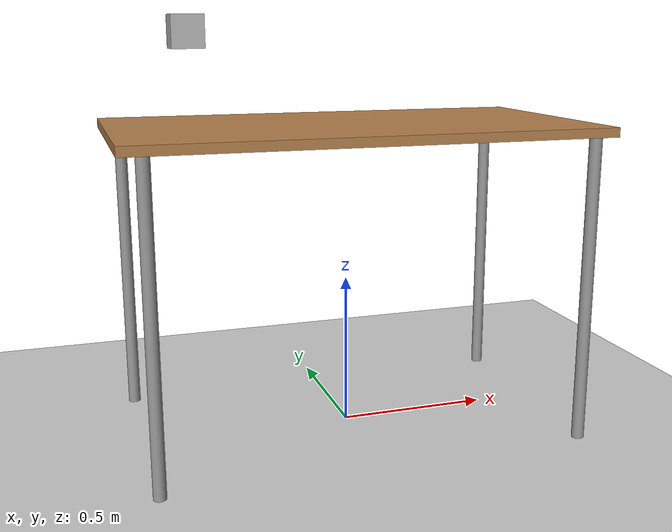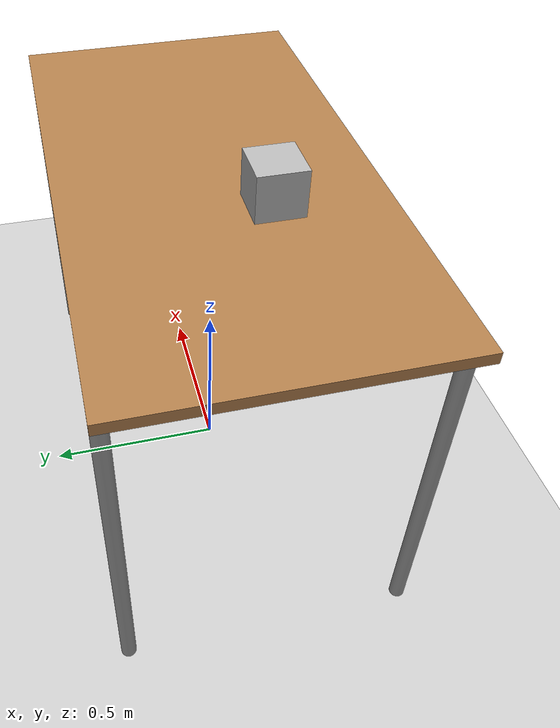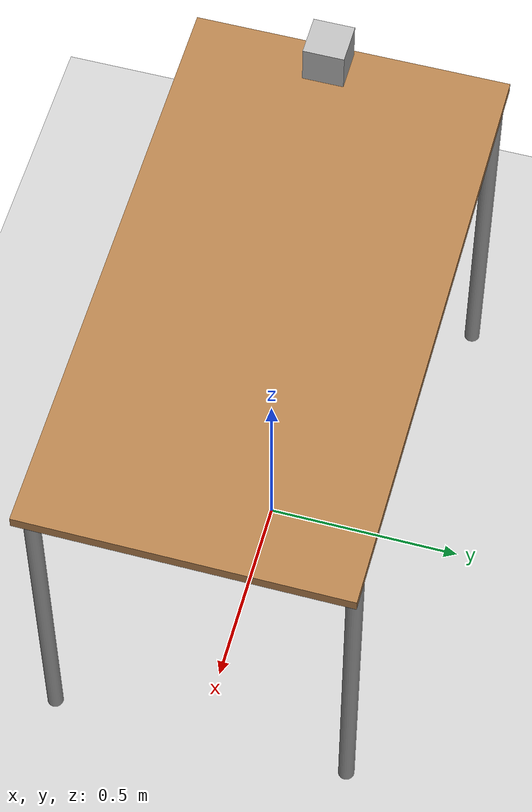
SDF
<sdf version="1.5">
	<world name="default">
		<!-- Earth Gravity-->
		<gravity>0 0 -9.8</gravity>
		<include>
			<uri>model://sun</uri>
		</include>
		<include>
			<uri>model://ground_plane</uri>
		</include>
		<include>
			<uri>model://table</uri>
		</include>
		<model name='camera'>
	      <static>true</static>
	      <pose>-0.5 0 1.3 0 0 1.57</pose>
	      <link name='link'>
	        <visual name='visual'>
	          <geometry>
	            <box>
	              <size>0.1 0.1 0.1</size>
	            </box>
	          </geometry>
	        </visual>
	        <sensor name='my_camera' type='camera'>
	          <update_rate>30.0</update_rate>
	          <camera name="head">
	            <save enabled="true">
	              <path>/tmp/camera_save_tutorial</path>
	            </save>
	            <horizontal_fov>1.047</horizontal_fov>
	            <image>
		          <width>800</width>
		          <height>800</height>
		          <format>R8G8B8</format>
	            </image>
	            <clip>
	              <near>0.02</near>
	              <far>300</far>
	            </clip>
	          </camera>
	          <update_rate>30</update_rate>
	          <plugin name="camera_controller" filename="libgazebo_ros_camera.so">
		        <alwaysOn>true</alwaysOn>
		        <updateRate>0.0</updateRate>
		        <cameraName>rrbot/camera_2</cameraName>
		        <imageTopicName>image_raw_2</imageTopicName>
		        <cameraInfoTopicName>camera_info</cameraInfoTopicName>
		        <frameName>camera_link</frameName>
		        <hackBaseline>0.07</hackBaseline>
		        <distortionK1>0.0</distortionK1>
		        <distortionK2>0.0</distortionK2>
		        <distortionK3>0.0</distortionK3>
		        <distortionT1>0.0</distortionT1>
		        <distortionT2>0.0</distortionT2>
      		  </plugin>
	        </sensor>
	      </link>

	    </model>
	</world>
</sdf>

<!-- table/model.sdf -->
<sdf version="1.5">
  <model name="table">
    <static>true</static>
    <link name="link">
      <collision name="surface">
        <pose>0 0 1.0 0 0 0</pose>
        <geometry>
          <box>
            <size>1.5 0.8 0.03</size>
          </box>
        </geometry>
        <surface>
          <friction>
            <ode>
              <mu>0.6</mu>
              <mu2>0.6</mu2>
            </ode>
          </friction>
        </surface>
      </collision>
      <visual name="visual1">
        <pose>0 0 1.0 0 0 0</pose>
        <geometry>
          <box>
            <size>1.5 0.8 0.03</size>
          </box>
        </geometry>
        <material>
          <script>
            <uri>model://media/materials/scripts/gazebo.material</uri>
            <name>Gazebo/Wood</name>
          </script>
        </material>
      </visual>
      <collision name="front_left_leg">
        <pose>0.68 0.38 0.5 0 0 0</pose>
        <geometry>
          <cylinder>
            <radius>0.02</radius>
            <length>1.0</length>
          </cylinder>
        </geometry>
      </collision>
      <visual name="front_left_leg">
        <pose>0.68 0.38 0.5 0 0 0</pose>
        <geometry>
          <cylinder>
            <radius>0.02</radius>
            <length>1.0</length>
          </cylinder>
        </geometry>
        <material>
          <script>
            <uri>model://media/materials/scripts/gazebo.material</uri>
            <name>Gazebo/Grey</name>
          </script>
        </material>
      </visual>
      <collision name="front_right_leg">
        <pose>0.68 -0.38 0.5 0 0 0</pose>
        <geometry>
          <cylinder>
            <radius>0.02</radius>
            <length>1.0</length>
          </cylinder>
        </geometry>
      </collision>
      <visual name="front_right_leg">
        <pose>0.68 -0.38 0.5 0 0 0</pose>
        <geometry>
          <cylinder>
            <radius>0.02</radius>
            <length>1.0</length>
          </cylinder>
        </geometry>
        <material>
          <script>
            <uri>model://media/materials/scripts/gazebo.material</uri>
            <name>Gazebo/Grey</name>
          </script>
        </material>
      </visual>
      <collision name="back_right_leg">
        <pose>-0.68 -0.38 0.5 0 0 0</pose>
        <geometry>
          <cylinder>
            <radius>0.02</radius>
            <length>1.0</length>
          </cylinder>
        </geometry>
      </collision>
      <visual name="back_right_leg">
        <pose>-0.68 -0.38 0.5 0 0 0</pose>
        <geometry>
          <cylinder>
            <radius>0.02</radius>
            <length>1.0</length>
          </cylinder>
        </geometry>
        <material>
          <script>
            <uri>model://media/materials/scripts/gazebo.material</uri>
            <name>Gazebo/Grey</name>
          </script>
        </material>
      </visual>
      <collision name="back_left_leg">
        <pose>-0.68 0.38 0.5 0 0 0</pose>
        <geometry>
          <cylinder>
            <radius>0.02</radius>
            <length>1.0</length>
          </cylinder>
        </geometry>
      </collision>
      <visual name="back_left_leg">
        <pose>-0.68 0.38 0.5 0 0 0</pose>
        <geometry>
          <cylinder>
            <radius>0.02</radius>
            <length>1.0</length>
          </cylinder>
        </geometry>
        <material>
          <script>
            <uri>model://media/materials/scripts/gazebo.material</uri>
            <name>Gazebo/Grey</name>
          </script>
        </material>
      </visual>
    </link>
  </model>
</sdf>
